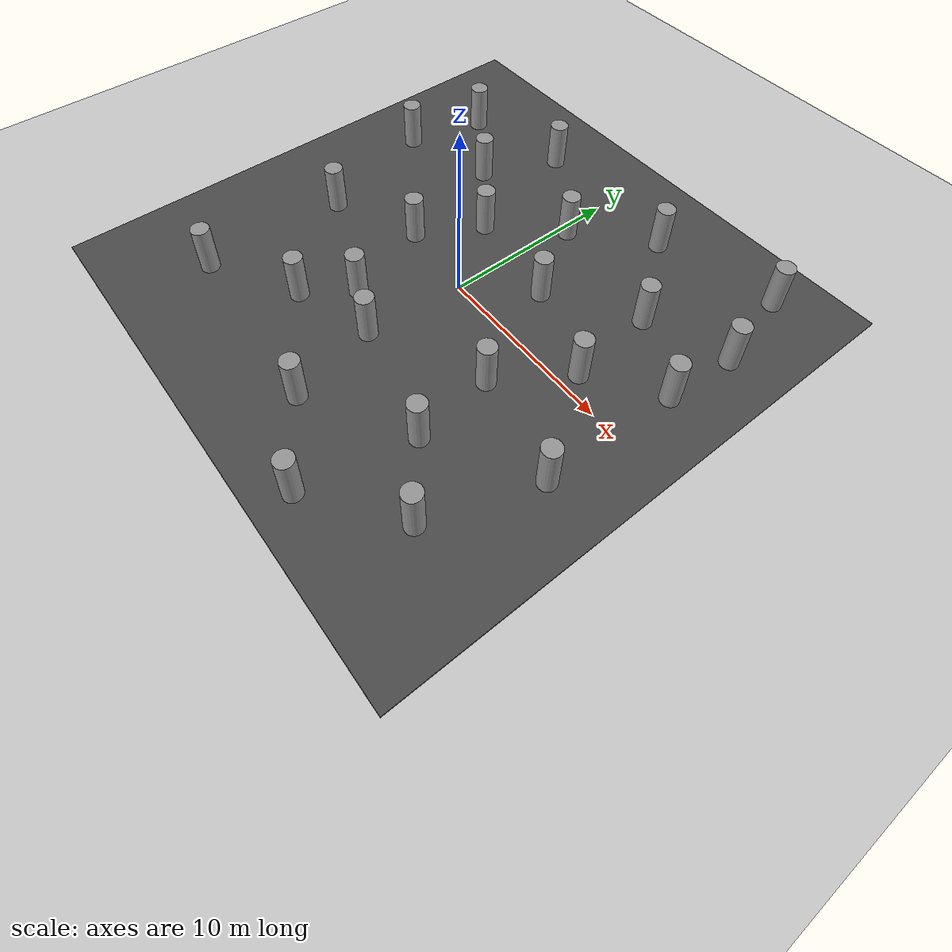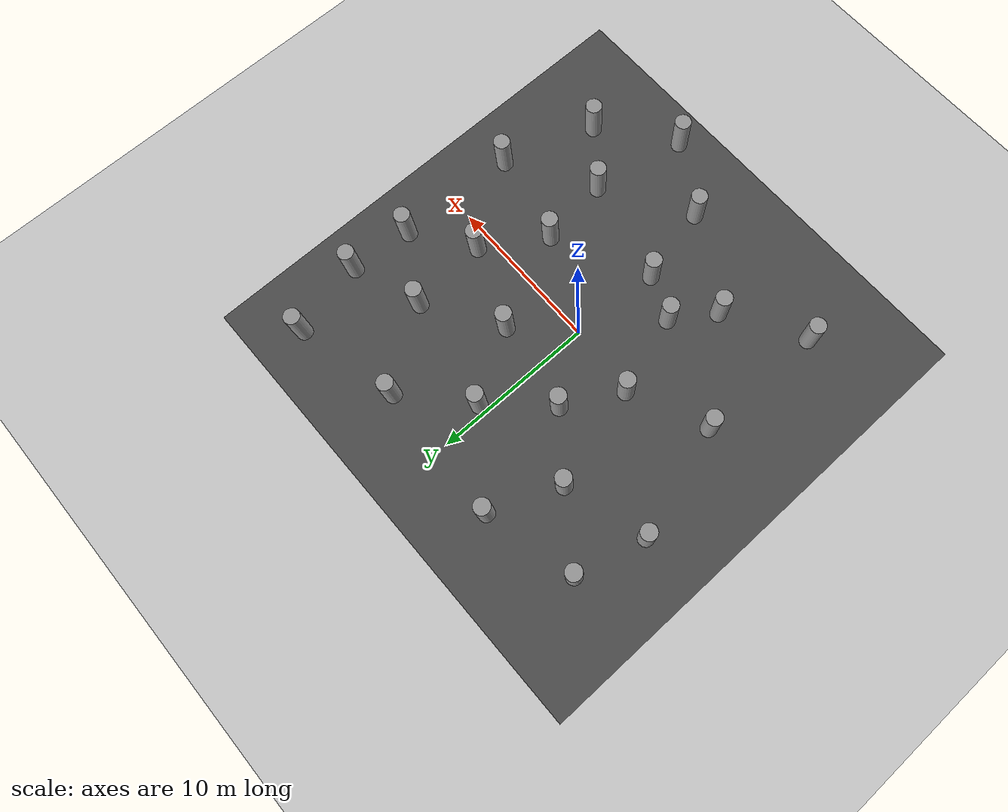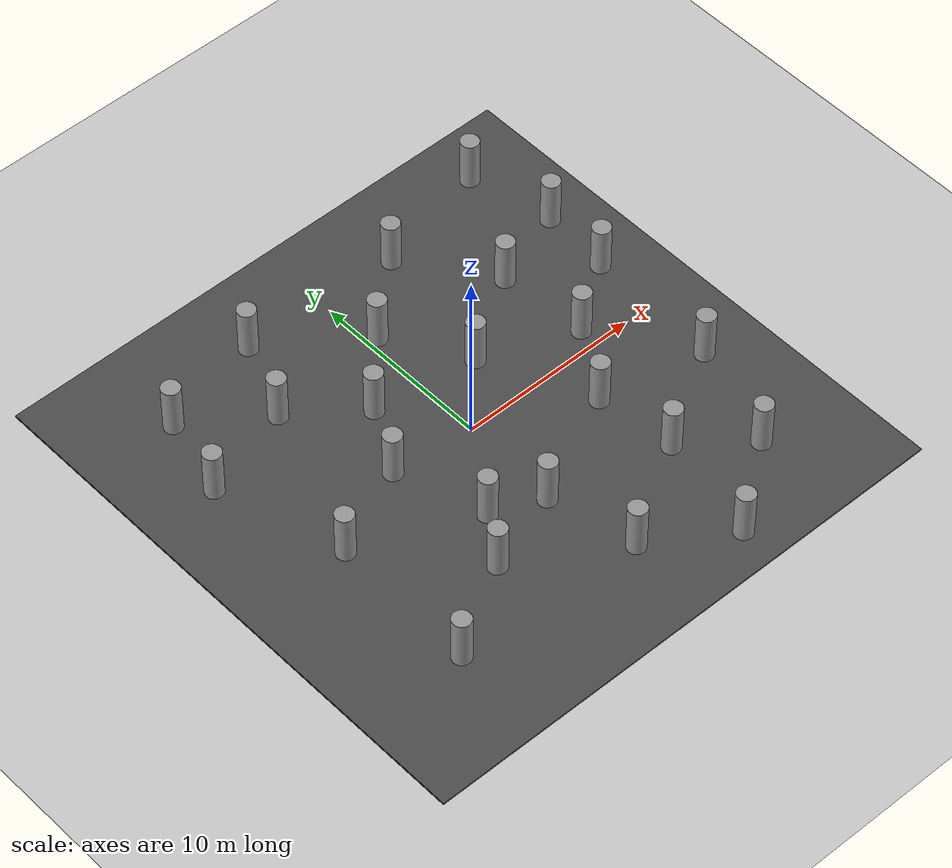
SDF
<sdf version="1.7">
 <world name="default">
  <light name="sun" type="directional">
   <pose>0 0 10 0 -0 0</pose>
   <diffuse>0.8 0.8 0.8 1</diffuse>
   <specular>0.2 0.2 0.2 1</specular>
   <attenuation>
    <range>1000</range>
    <constant>0.9</constant>
    <linear>0.01</linear>
    <quadratic>0.001</quadratic>
   </attenuation>
   <direction>-0.5 0.1 -0.9</direction>
   <spot><inner_angle>0</inner_angle><outer_angle>0</outer_angle><falloff>0</falloff></spot>
  </light>
  <model name="ground_plane">
   <static>1</static>
   <link name="link">
    <collision name="collision">
     <geometry><plane><normal>0 0 1</normal><size>100 100</size></plane></geometry>
     <surface>
      <contact><collide_bitmask>65535</collide_bitmask></contact>
      <friction><ode><mu>100</mu><mu2>50</mu2></ode></friction>
     </surface>
    </collision>
    <visual name="visual">
     <cast_shadows>0</cast_shadows>
     <geometry><plane><normal>0 0 1</normal><size>100 100</size></plane></geometry>
     <material>
      <script><uri>file://media/materials/scripts/gazebo.material</uri><name>Gazebo/Grey</name></script>
     </material>
    </visual>
   </link>
  </model>
  <model name="asphalt_plane">
   <pose>-0.28129 -0.019932 0 0 -0 0</pose>
   <static>1</static>
   <link name="link">
    <collision name="collision"><geometry><box><size>30 30 0.1</size></box></geometry></collision>
    <visual name="visual">
     <cast_shadows>0</cast_shadows>
     <geometry><box><size>30 30 0.1</size></box></geometry>
     <material>
      <script>
       <uri>model://asphalt_plane/materials/scripts</uri>
       <uri>model://asphalt_plane/materials/textures</uri>
       <name>vrc/asphalt</name>
      </script>
     </material>
    </visual>
   </link>
  </model>
  <physics name="default_physics" default="0" type="ode">
   <ode>
    <solver>
     <friction_model>cone_model</friction_model>
     <island_threads>6</island_threads>
     <type>quick</type>
     <iters>10</iters>
     <sor>1.3</sor>
     <use_dynamic_moi_rescaling>0</use_dynamic_moi_rescaling>
    </solver>
    <constraints>
     <cfm>0</cfm>
     <erp>0.2</erp>
     <contact_max_correcting_vel>100</contact_max_correcting_vel>
     <contact_surface_layer>0.001</contact_surface_layer>
    </constraints>
   </ode>
   <max_step_size>0.001</max_step_size>
   <real_time_factor>1</real_time_factor>
   <real_time_update_rate>1000</real_time_update_rate>
  </physics>
  <gravity>0 0 -9.8066</gravity>
  <magnetic_field>6e-06 2.3e-05 -4.2e-05</magnetic_field>
  <atmosphere type="adiabatic"/>
  <scene><ambient>0.4 0.4 0.4 1</ambient><background>0.7 0.7 0.7 1</background><shadows>1</shadows></scene>
  <spherical_coordinates>
   <surface_model>EARTH_WGS84</surface_model>
   <latitude_deg>0</latitude_deg>
   <longitude_deg>0</longitude_deg>
   <elevation>0</elevation>
   <heading_deg>0</heading_deg>
  </spherical_coordinates>
  <model name="unit_cylinder_clone">
   <pose>5.06316 -12.9749 1.44654 1e-06 1e-06 -0.013594</pose>
   <link name="link">
    <inertial>
     <mass>1</mass>
     <inertia><ixx>0.145833</ixx><ixy>0</ixy><ixz>0</ixz><iyy>0.145833</iyy><iyz>0</iyz><izz>0.125</izz></inertia>
    </inertial>
    <collision name="collision">
     <geometry><cylinder><radius>0.5</radius><length>2.79309</length></cylinder></geometry>
    </collision>
    <visual name="visual">
     <geometry><cylinder><radius>0.5</radius><length>2.79309</length></cylinder></geometry>
     <material>
      <script><name>Gazebo/Grey</name><uri>file://media/materials/scripts/gazebo.material</uri></script>
     </material>
    </visual>
   </link>
  </model>
  <model name="unit_cylinder_clone_0">
   <pose>11.8758 7.31375 1.44654 -2e-06 -0 -0.01217</pose>
   <link name="link">
    <inertial>
     <mass>1</mass>
     <inertia><ixx>0.145833</ixx><ixy>0</ixy><ixz>0</ixz><iyy>0.145833</iyy><iyz>0</iyz><izz>0.125</izz></inertia>
    </inertial>
    <collision name="collision">
     <geometry><cylinder><radius>0.5</radius><length>2.79309</length></cylinder></geometry>
    </collision>
    <visual name="visual">
     <geometry><cylinder><radius>0.5</radius><length>2.79309</length></cylinder></geometry>
     <material>
      <script><name>Gazebo/Grey</name><uri>file://media/materials/scripts/gazebo.material</uri></script>
     </material>
    </visual>
   </link>
  </model>
  <model name="unit_cylinder_clone_1">
   <pose>3.00251 2.99758 1.44653 -3e-06 -1e-06 -0.01315</pose>
   <link name="link">
    <inertial>
     <mass>1</mass>
     <inertia><ixx>0.145833</ixx><ixy>0</ixy><ixz>0</ixz><iyy>0.145833</iyy><iyz>0</iyz><izz>0.125</izz></inertia>
    </inertial>
    <collision name="collision">
     <geometry><cylinder><radius>0.5</radius><length>2.79309</length></cylinder></geometry>
    </collision>
    <visual name="visual">
     <geometry><cylinder><radius>0.5</radius><length>2.79309</length></cylinder></geometry>
     <material>
      <script><name>Gazebo/Grey</name><uri>file://media/materials/scripts/gazebo.material</uri></script>
     </material>
    </visual>
   </link>
  </model>
  <model name="unit_cylinder_clone_2">
   <pose>8.00086 0.998854 1.44655 1e-06 -1e-06 -0.01167</pose>
   <link name="link">
    <inertial>
     <mass>1</mass>
     <inertia><ixx>0.145833</ixx><ixy>0</ixy><ixz>0</ixz><iyy>0.145833</iyy><iyz>0</iyz><izz>0.125</izz></inertia>
    </inertial>
    <collision name="collision">
     <geometry><cylinder><radius>0.5</radius><length>2.79309</length></cylinder></geometry>
    </collision>
    <visual name="visual">
     <geometry><cylinder><radius>0.5</radius><length>2.79309</length></cylinder></geometry>
     <material>
      <script><name>Gazebo/Grey</name><uri>file://media/materials/scripts/gazebo.material</uri></script>
     </material>
    </visual>
   </link>
  </model>
  <model name="unit_cylinder_clone_3">
   <pose>11.3426 -3.98811 1.44654 0 -1e-06 -0.011022</pose>
   <link name="link">
    <inertial>
     <mass>1</mass>
     <inertia><ixx>0.145833</ixx><ixy>0</ixy><ixz>0</ixz><iyy>0.145833</iyy><iyz>0</iyz><izz>0.125</izz></inertia>
    </inertial>
    <collision name="collision">
     <geometry><cylinder><radius>0.5</radius><length>2.79309</length></cylinder></geometry>
    </collision>
    <visual name="visual">
     <geometry><cylinder><radius>0.5</radius><length>2.79309</length></cylinder></geometry>
     <material>
      <script><name>Gazebo/Grey</name><uri>file://media/materials/scripts/gazebo.material</uri></script>
     </material>
    </visual>
   </link>
  </model>
  <model name="unit_cylinder_clone_4">
   <pose>9.45973 -9.71455 1.44655 7e-06 -3e-06 -0.01344</pose>
   <link name="link">
    <inertial>
     <mass>1</mass>
     <inertia><ixx>0.145833</ixx><ixy>0</ixy><ixz>0</ixz><iyy>0.145833</iyy><iyz>0</iyz><izz>0.125</izz></inertia>
    </inertial>
    <collision name="collision">
     <geometry><cylinder><radius>0.5</radius><length>2.79309</length></cylinder></geometry>
    </collision>
    <visual name="visual">
     <geometry><cylinder><radius>0.5</radius><length>2.79309</length></cylinder></geometry>
     <material>
      <script><name>Gazebo/Grey</name><uri>file://media/materials/scripts/gazebo.material</uri></script>
     </material>
    </visual>
   </link>
  </model>
  <model name="unit_cylinder_clone_5">
   <pose>-10.2057 9.47743 1.44654 1e-06 -0 -0.01412</pose>
   <link name="link">
    <inertial>
     <mass>1</mass>
     <inertia><ixx>0.145833</ixx><ixy>0</ixy><ixz>0</ixz><iyy>0.145833</iyy><iyz>0</iyz><izz>0.125</izz></inertia>
    </inertial>
    <collision name="collision">
     <geometry><cylinder><radius>0.5</radius><length>2.79309</length></cylinder></geometry>
    </collision>
    <visual name="visual">
     <geometry><cylinder><radius>0.5</radius><length>2.79309</length></cylinder></geometry>
     <material>
      <script><name>Gazebo/Grey</name><uri>file://media/materials/scripts/gazebo.material</uri></script>
     </material>
    </visual>
   </link>
  </model>
  <model name="unit_cylinder_clone_6">
   <pose>-4.4594 10.8311 1.44654 1e-06 -0 -0.014239</pose>
   <link name="link">
    <inertial>
     <mass>1</mass>
     <inertia><ixx>0.145833</ixx><ixy>0</ixy><ixz>0</ixz><iyy>0.145833</iyy><iyz>0</iyz><izz>0.125</izz></inertia>
    </inertial>
    <collision name="collision">
     <geometry><cylinder><radius>0.5</radius><length>2.79309</length></cylinder></geometry>
    </collision>
    <visual name="visual">
     <geometry><cylinder><radius>0.5</radius><length>2.79309</length></cylinder></geometry>
     <material>
      <script><name>Gazebo/Grey</name><uri>file://media/materials/scripts/gazebo.material</uri></script>
     </material>
    </visual>
   </link>
  </model>
  <model name="unit_cylinder_clone_7">
   <pose>-2.94001 -4.35359 1.44654 -0 1e-06 -0.01277</pose>
   <link name="link">
    <inertial>
     <mass>1</mass>
     <inertia><ixx>0.145833</ixx><ixy>0</ixy><ixz>0</ixz><iyy>0.145833</iyy><iyz>0</iyz><izz>0.125</izz></inertia>
    </inertial>
    <collision name="collision">
     <geometry><cylinder><radius>0.5</radius><length>2.79309</length></cylinder></geometry>
    </collision>
    <visual name="visual">
     <geometry><cylinder><radius>0.5</radius><length>2.79309</length></cylinder></geometry>
     <material>
      <script><name>Gazebo/Grey</name><uri>file://media/materials/scripts/gazebo.material</uri></script>
     </material>
    </visual>
   </link>
  </model>
  <model name="unit_cylinder_clone_8">
   <pose>-4.64587 -6.89166 1.44654 -1e-06 1e-06 -0.013677</pose>
   <link name="link">
    <inertial>
     <mass>1</mass>
     <inertia><ixx>0.145833</ixx><ixy>0</ixy><ixz>0</ixz><iyy>0.145833</iyy><iyz>0</iyz><izz>0.125</izz></inertia>
    </inertial>
    <collision name="collision">
     <geometry><cylinder><radius>0.5</radius><length>2.79309</length></cylinder></geometry>
    </collision>
    <visual name="visual">
     <geometry><cylinder><radius>0.5</radius><length>2.79309</length></cylinder></geometry>
     <material>
      <script><name>Gazebo/Grey</name><uri>file://media/materials/scripts/gazebo.material</uri></script>
     </material>
    </visual>
   </link>
  </model>
  <model name="unit_cylinder_clone_9">
   <pose>-0.282752 -5.52829 1.44654 1e-06 2e-06 -0.012766</pose>
   <link name="link">
    <inertial>
     <mass>1</mass>
     <inertia><ixx>0.145833</ixx><ixy>0</ixy><ixz>0</ixz><iyy>0.145833</iyy><iyz>0</iyz><izz>0.125</izz></inertia>
    </inertial>
    <collision name="collision">
     <geometry><cylinder><radius>0.5</radius><length>2.79309</length></cylinder></geometry>
    </collision>
    <visual name="visual">
     <geometry><cylinder><radius>0.5</radius><length>2.79309</length></cylinder></geometry>
     <material>
      <script><name>Gazebo/Grey</name><uri>file://media/materials/scripts/gazebo.material</uri></script>
     </material>
    </visual>
   </link>
  </model>
  <model name="unit_cylinder_clone_10">
   <pose>-9.31833 -9.62393 1.44655 -1e-06 -3e-06 -0.013169</pose>
   <link name="link">
    <inertial>
     <mass>1</mass>
     <inertia><ixx>0.145833</ixx><ixy>0</ixy><ixz>0</ixz><iyy>0.145833</iyy><iyz>0</iyz><izz>0.125</izz></inertia>
    </inertial>
    <collision name="collision">
     <geometry><cylinder><radius>0.5</radius><length>2.79309</length></cylinder></geometry>
    </collision>
    <visual name="visual">
     <geometry><cylinder><radius>0.5</radius><length>2.79309</length></cylinder></geometry>
     <material>
      <script><name>Gazebo/Grey</name><uri>file://media/materials/scripts/gazebo.material</uri></script>
     </material>
    </visual>
   </link>
  </model>
  <model name="unit_cylinder_clone_11">
   <pose>0.851617 -10.2703 1.44654 -0 -0 -0.013707</pose>
   <link name="link">
    <inertial>
     <mass>1</mass>
     <inertia><ixx>0.145833</ixx><ixy>0</ixy><ixz>0</ixz><iyy>0.145833</iyy><iyz>0</iyz><izz>0.125</izz></inertia>
    </inertial>
    <collision name="collision">
     <geometry><cylinder><radius>0.5</radius><length>2.79309</length></cylinder></geometry>
    </collision>
    <visual name="visual">
     <geometry><cylinder><radius>0.5</radius><length>2.79309</length></cylinder></geometry>
     <material>
      <script><name>Gazebo/Grey</name><uri>file://media/materials/scripts/gazebo.material</uri></script>
     </material>
    </visual>
   </link>
  </model>
  <model name="unit_cylinder_clone_12">
   <pose>5.62798 -2.76624 1.44655 4e-06 -2e-06 -0.012363</pose>
   <link name="link">
    <inertial>
     <mass>1</mass>
     <inertia><ixx>0.145833</ixx><ixy>0</ixy><ixz>0</ixz><iyy>0.145833</iyy><iyz>0</iyz><izz>0.125</izz></inertia>
    </inertial>
    <collision name="collision">
     <geometry><cylinder><radius>0.5</radius><length>2.79309</length></cylinder></geometry>
    </collision>
    <visual name="visual">
     <geometry><cylinder><radius>0.5</radius><length>2.79309</length></cylinder></geometry>
     <material>
      <script><name>Gazebo/Grey</name><uri>file://media/materials/scripts/gazebo.material</uri></script>
     </material>
    </visual>
   </link>
  </model>
  <model name="unit_cylinder_clone_13">
   <pose>7.52609 5.84623 1.44654 0 -1e-06 -0.011026</pose>
   <link name="link">
    <inertial>
     <mass>1</mass>
     <inertia><ixx>0.145833</ixx><ixy>0</ixy><ixz>0</ixz><iyy>0.145833</iyy><iyz>0</iyz><izz>0.125</izz></inertia>
    </inertial>
    <collision name="collision">
     <geometry><cylinder><radius>0.5</radius><length>2.79309</length></cylinder></geometry>
    </collision>
    <visual name="visual">
     <geometry><cylinder><radius>0.5</radius><length>2.79309</length></cylinder></geometry>
     <material>
      <script><name>Gazebo/Grey</name><uri>file://media/materials/scripts/gazebo.material</uri></script>
     </material>
    </visual>
   </link>
  </model>
  <model name="unit_cylinder_clone_14">
   <pose>-2.63536 3.85739 1.44654 1e-06 -0 -0.013393</pose>
   <link name="link">
    <inertial>
     <mass>1</mass>
     <inertia><ixx>0.145833</ixx><ixy>0</ixy><ixz>0</ixz><iyy>0.145833</iyy><iyz>0</iyz><izz>0.125</izz></inertia>
    </inertial>
    <collision name="collision">
     <geometry><cylinder><radius>0.5</radius><length>2.79309</length></cylinder></geometry>
    </collision>
    <visual name="visual">
     <geometry><cylinder><radius>0.5</radius><length>2.79309</length></cylinder></geometry>
     <material>
      <script><name>Gazebo/Grey</name><uri>file://media/materials/scripts/gazebo.material</uri></script>
     </material>
    </visual>
   </link>
  </model>
  <model name="unit_cylinder_clone_15">
   <pose>-9.22404 -1.63185 1.44654 0 -1e-06 -0.013471</pose>
   <link name="link">
    <inertial>
     <mass>1</mass>
     <inertia><ixx>0.145833</ixx><ixy>0</ixy><ixz>0</ixz><iyy>0.145833</iyy><iyz>0</iyz><izz>0.125</izz></inertia>
    </inertial>
    <collision name="collision">
     <geometry><cylinder><radius>0.5</radius><length>2.79309</length></cylinder></geometry>
    </collision>
    <visual name="visual">
     <geometry><cylinder><radius>0.5</radius><length>2.79309</length></cylinder></geometry>
     <material>
      <script><name>Gazebo/Grey</name><uri>file://media/materials/scripts/gazebo.material</uri></script>
     </material>
    </visual>
   </link>
  </model>
  <model name="unit_cylinder_clone_16">
   <pose>4.27663 10.4474 1.44654 1e-06 0 -0.013837</pose>
   <link name="link">
    <inertial>
     <mass>1</mass>
     <inertia><ixx>0.145833</ixx><ixy>0</ixy><ixz>0</ixz><iyy>0.145833</iyy><iyz>0</iyz><izz>0.125</izz></inertia>
    </inertial>
    <collision name="collision">
     <geometry><cylinder><radius>0.5</radius><length>2.79309</length></cylinder></geometry>
    </collision>
    <visual name="visual">
     <geometry><cylinder><radius>0.5</radius><length>2.79309</length></cylinder></geometry>
     <material>
      <script><name>Gazebo/Grey</name><uri>file://media/materials/scripts/gazebo.material</uri></script>
     </material>
    </visual>
   </link>
  </model>
  <model name="unit_cylinder_clone_17">
   <pose>6.17072 -7.08418 1.44654 1e-06 1e-06 -0.012442</pose>
   <link name="link">
    <inertial>
     <mass>1</mass>
     <inertia><ixx>0.145833</ixx><ixy>0</ixy><ixz>0</ixz><iyy>0.145833</iyy><iyz>0</iyz><izz>0.125</izz></inertia>
    </inertial>
    <collision name="collision">
     <geometry><cylinder><radius>0.5</radius><length>2.79309</length></cylinder></geometry>
    </collision>
    <visual name="visual">
     <geometry><cylinder><radius>0.5</radius><length>2.79309</length></cylinder></geometry>
     <material>
      <script><name>Gazebo/Grey</name><uri>file://media/materials/scripts/gazebo.material</uri></script>
     </material>
    </visual>
   </link>
  </model>
  <model name="unit_cylinder_clone_14_clone">
   <pose>0.512451 7.17676 1.44654 1e-06 -0 -0.013909</pose>
   <link name="link">
    <inertial>
     <mass>1</mass>
     <inertia><ixx>0.145833</ixx><ixy>0</ixy><ixz>0</ixz><iyy>0.145833</iyy><iyz>0</iyz><izz>0.125</izz></inertia>
    </inertial>
    <collision name="collision">
     <geometry><cylinder><radius>0.5</radius><length>2.79309</length></cylinder></geometry>
    </collision>
    <visual name="visual">
     <geometry><cylinder><radius>0.5</radius><length>2.79309</length></cylinder></geometry>
     <material>
      <script><name>Gazebo/Grey</name><uri>file://media/materials/scripts/gazebo.material</uri></script>
     </material>
    </visual>
   </link>
  </model>
  <model name="unit_cylinder_clone_14_clone_0">
   <pose>-6.19753 6.63371 1.44654 0 -0 -0.013616</pose>
   <link name="link">
    <inertial>
     <mass>1</mass>
     <inertia><ixx>0.145833</ixx><ixy>0</ixy><ixz>0</ixz><iyy>0.145833</iyy><iyz>0</iyz><izz>0.125</izz></inertia>
    </inertial>
    <collision name="collision">
     <geometry><cylinder><radius>0.5</radius><length>2.79309</length></cylinder></geometry>
    </collision>
    <visual name="visual">
     <geometry><cylinder><radius>0.5</radius><length>2.79309</length></cylinder></geometry>
     <material>
      <script><name>Gazebo/Grey</name><uri>file://media/materials/scripts/gazebo.material</uri></script>
     </material>
    </visual>
   </link>
  </model>
  <model name="unit_cylinder_clone_14_clone_1">
   <pose>-11.3114 5.18964 1.44655 -2e-06 0 -0.013799</pose>
   <link name="link">
    <inertial>
     <mass>1</mass>
     <inertia><ixx>0.145833</ixx><ixy>0</ixy><ixz>0</ixz><iyy>0.145833</iyy><iyz>0</iyz><izz>0.125</izz></inertia>
    </inertial>
    <collision name="collision">
     <geometry><cylinder><radius>0.5</radius><length>2.79309</length></cylinder></geometry>
    </collision>
    <visual name="visual">
     <geometry><cylinder><radius>0.5</radius><length>2.79309</length></cylinder></geometry>
     <material>
      <script><name>Gazebo/Grey</name><uri>file://media/materials/scripts/gazebo.material</uri></script>
     </material>
    </visual>
   </link>
  </model>
  <model name="unit_cylinder_clone_14_clone_2">
   <pose>10.7793 11.9479 1.44655 1e-06 -2e-06 -0.013118</pose>
   <link name="link">
    <inertial>
     <mass>1</mass>
     <inertia><ixx>0.145833</ixx><ixy>0</ixy><ixz>0</ixz><iyy>0.145833</iyy><iyz>0</iyz><izz>0.125</izz></inertia>
    </inertial>
    <collision name="collision">
     <geometry><cylinder><radius>0.5</radius><length>2.79309</length></cylinder></geometry>
    </collision>
    <visual name="visual">
     <geometry><cylinder><radius>0.5</radius><length>2.79309</length></cylinder></geometry>
     <material>
      <script><name>Gazebo/Grey</name><uri>file://media/materials/scripts/gazebo.material</uri></script>
     </material>
    </visual>
   </link>
  </model>
  <model name="unit_cylinder_clone_14_clone_3">
   <pose>11.586 3.44358 1.44655 -3e-06 8e-06 -0.013013</pose>
   <link name="link">
    <inertial>
     <mass>1</mass>
     <inertia><ixx>0.145833</ixx><ixy>0</ixy><ixz>0</ixz><iyy>0.145833</iyy><iyz>0</iyz><izz>0.125</izz></inertia>
    </inertial>
    <collision name="collision">
     <geometry><cylinder><radius>0.5</radius><length>2.79309</length></cylinder></geometry>
    </collision>
    <visual name="visual">
     <geometry><cylinder><radius>0.5</radius><length>2.79309</length></cylinder></geometry>
     <material>
      <script><name>Gazebo/Grey</name><uri>file://media/materials/scripts/gazebo.material</uri></script>
     </material>
    </visual>
   </link>
  </model>
  <model name="unit_cylinder_clone_14_clone_0_clone">
   <pose>-4.50019 0.423412 1.44654 0 4e-06 -0.013476</pose>
   <link name="link">
    <inertial>
     <mass>1</mass>
     <inertia><ixx>0.145833</ixx><ixy>0</ixy><ixz>0</ixz><iyy>0.145833</iyy><iyz>0</iyz><izz>0.125</izz></inertia>
    </inertial>
    <collision name="collision">
     <geometry><cylinder><radius>0.5</radius><length>2.79309</length></cylinder></geometry>
    </collision>
    <visual name="visual">
     <geometry><cylinder><radius>0.5</radius><length>2.79309</length></cylinder></geometry>
     <material>
      <script><name>Gazebo/Grey</name><uri>file://media/materials/scripts/gazebo.material</uri></script>
     </material>
    </visual>
   </link>
  </model>
 </world>
</sdf>
